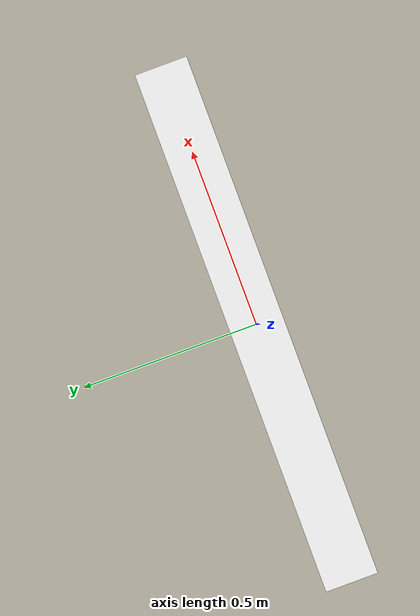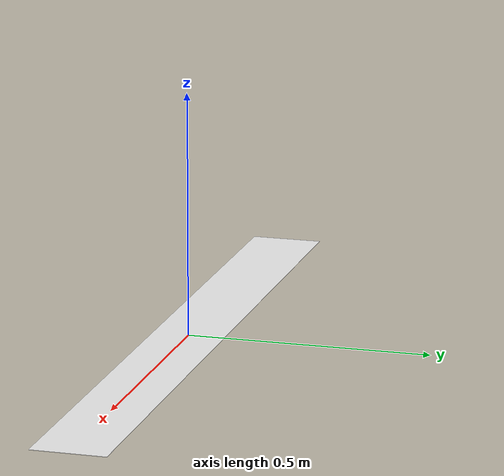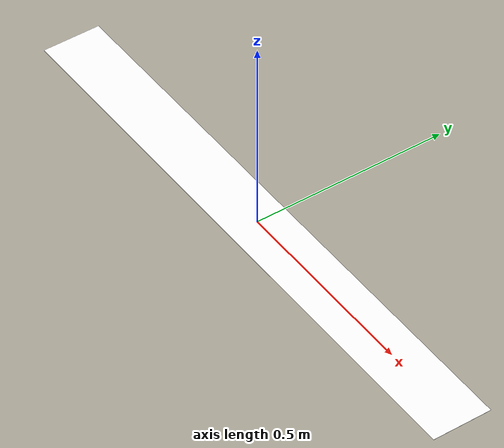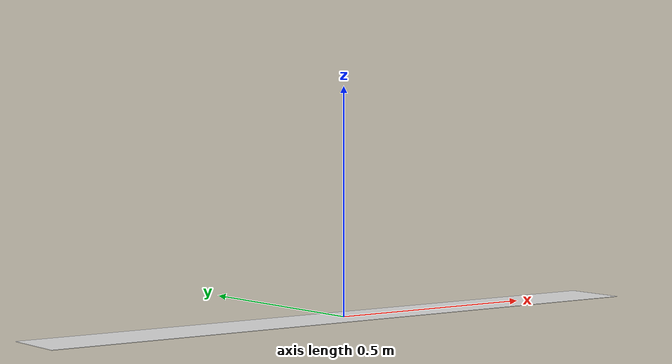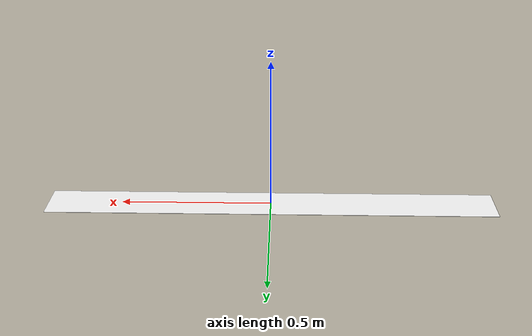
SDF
<?xml version="1.0" ?>
<sdf version="1.9">
  <model name="MODEL_NAME_PLACEHOLDER">
    <static>true</static>
    <link name="link">
      <visual name="visual">
        <pose>0 0 0 0 0 0</pose>
        <geometry>
          <box>
            <size>1.5 0.15 0.001</size>
          </box>
        </geometry>
        <material>
          <ambient>1.0 1.0 1.0 1.0</ambient>
          <diffuse>1.0 1.0 1.0 1.0</diffuse>
          <specular>0.0 0.0 0.0 1.0</specular>
          <emissive>0.0 0.0 0.0 1.0</emissive>
          <pbr>
            <metal>
              <albedo_map>file:///root/ros2_ws/src/pkg/vio_recovery/models/aruco_rescue/materials/textures/paint_swipe.png</albedo_map>
              <roughness>1.0</roughness>
              <metalness>0.0</metalness>
            </metal>
          </pbr>
        </material>
      </visual>
    </link>
  </model>
</sdf>
